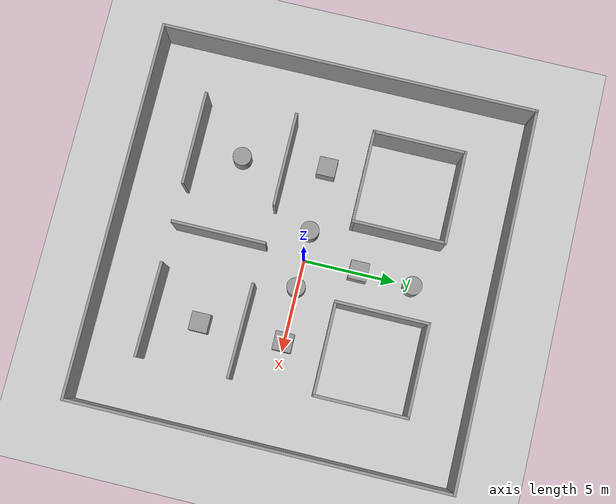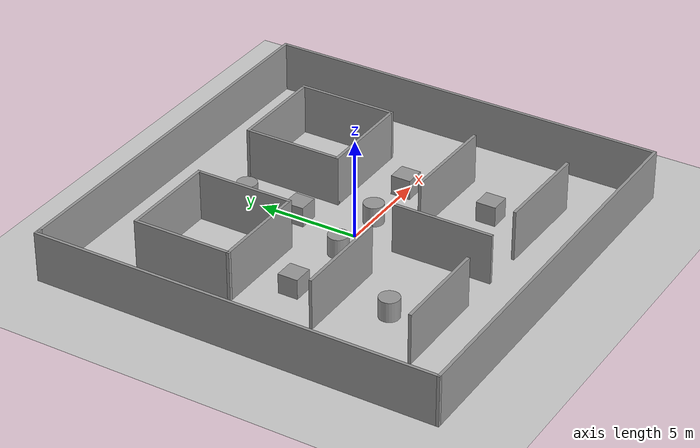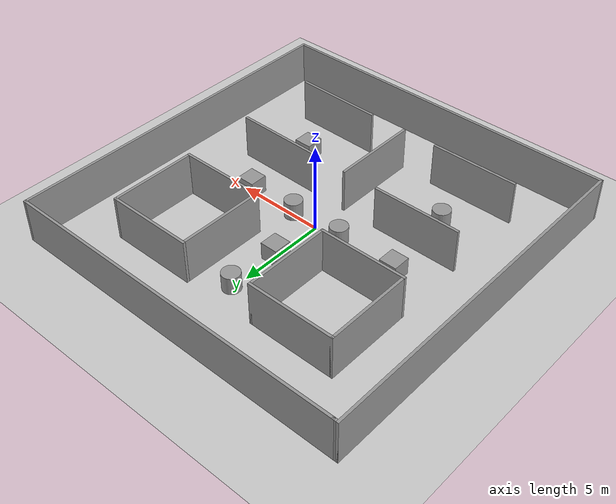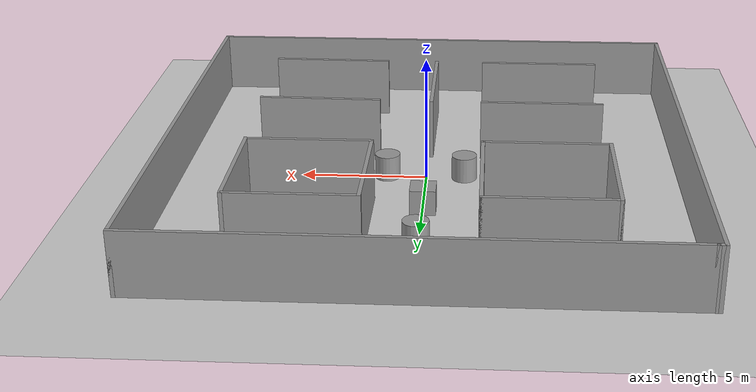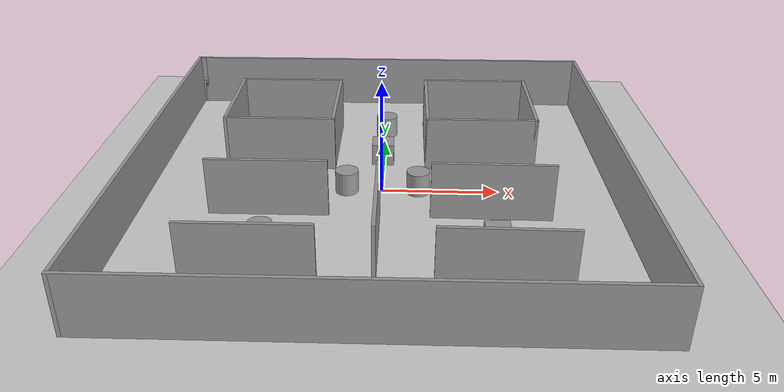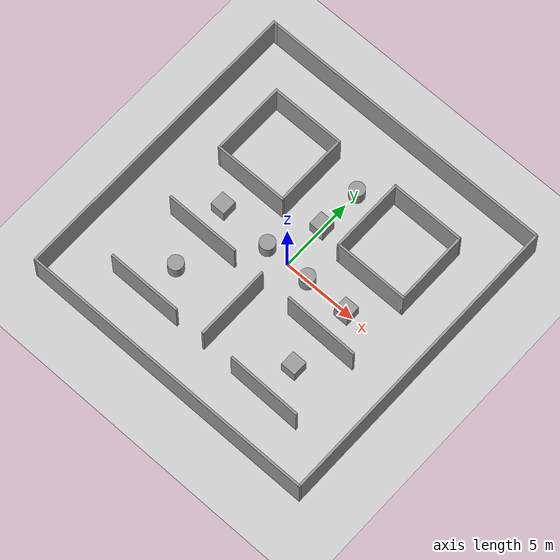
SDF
<sdf version="1.7">
 <world name="default">
  <light name="sun" type="directional">
   <pose>0 0 10 0 -0 0</pose>
   <diffuse>0.8 0.8 0.8 1</diffuse>
   <specular>0.2 0.2 0.2 1</specular>
   <attenuation>
    <range>1000</range>
    <constant>0.9</constant>
    <linear>0.01</linear>
    <quadratic>0.001</quadratic>
   </attenuation>
   <direction>-0.5 0.1 -0.9</direction>
   <spot><inner_angle>0</inner_angle><outer_angle>0</outer_angle><falloff>0</falloff></spot>
  </light>
  <plugin name="clock_control" filename="libclock_plugin.so"/>
  <model name="ground_plane">
   <static>1</static>
   <link name="link">
    <collision name="collision">
     <geometry><plane><normal>0 0 1</normal><size>100 100</size></plane></geometry>
     <surface>
      <contact><collide_bitmask>65535</collide_bitmask></contact>
      <friction><ode><mu>100</mu><mu2>50</mu2></ode></friction>
     </surface>
    </collision>
    <visual name="visual">
     <cast_shadows>0</cast_shadows>
     <geometry><plane><normal>0 0 1</normal><size>100 100</size></plane></geometry>
     <material>
      <script><uri>file://media/materials/scripts/gazebo.material</uri><name>Gazebo/Grey</name></script>
     </material>
    </visual>
   </link>
  </model>
  <gravity>0 0 -9.8</gravity>
  <magnetic_field>6e-06 2.3e-05 -4.2e-05</magnetic_field>
  <atmosphere type="adiabatic"/>
  <physics type="ode">
   <max_step_size>0.01</max_step_size>
   <real_time_factor>1</real_time_factor>
   <real_time_update_rate>1000</real_time_update_rate>
  </physics>
  <scene><ambient>0.4 0.4 0.4 1</ambient><background>0.7 0.7 0.7 1</background><shadows>1</shadows></scene>
  <spherical_coordinates>
   <surface_model>EARTH_WGS84</surface_model>
   <latitude_deg>0</latitude_deg>
   <longitude_deg>0</longitude_deg>
   <elevation>0</elevation>
   <heading_deg>0</heading_deg>
  </spherical_coordinates>
  <model name="p2p_enhanced">
   <pose>-0.103745 0.000206 0 0 -0 0</pose>
   <link name="Wall_10">
    <collision name="Wall_10_Collision">
     <geometry><box><size>20 0.15 2.5</size></box></geometry>
     <pose>0 0 1.25 0 -0 0</pose>
    </collision>
    <visual name="Wall_10_Visual">
     <pose>0 0 1.25 0 -0 0</pose>
     <geometry><box><size>20 0.15 2.5</size></box></geometry>
     <material>
      <script><uri>file://media/materials/scripts/gazebo.material</uri><name>Gazebo/Grey</name></script>
      <ambient>1 1 1 1</ambient>
     </material>
     <meta><layer>0</layer></meta>
    </visual>
    <pose>0.125 10.05 0 0 -0 0</pose>
   </link>
   <link name="Wall_11">
    <collision name="Wall_11_Collision">
     <geometry><box><size>20.25 0.15 2.5</size></box></geometry>
     <pose>0 0 1.25 0 -0 0</pose>
    </collision>
    <visual name="Wall_11_Visual">
     <pose>0 0 1.25 0 -0 0</pose>
     <geometry><box><size>20.25 0.15 2.5</size></box></geometry>
     <material>
      <script><uri>file://media/materials/scripts/gazebo.material</uri><name>Gazebo/Grey</name></script>
      <ambient>1 1 1 1</ambient>
     </material>
     <meta><layer>0</layer></meta>
    </visual>
    <pose>10.05 0 0 0 -0 -1.5708</pose>
   </link>
   <link name="Wall_12">
    <collision name="Wall_12_Collision">
     <geometry><box><size>20.25 0.15 2.5</size></box></geometry>
     <pose>0 0 1.25 0 -0 0</pose>
    </collision>
    <visual name="Wall_12_Visual">
     <pose>0 0 1.25 0 -0 0</pose>
     <geometry><box><size>20.25 0.15 2.5</size></box></geometry>
     <material>
      <script><uri>file://media/materials/scripts/gazebo.material</uri><name>Gazebo/Grey</name></script>
      <ambient>1 1 1 1</ambient>
     </material>
     <meta><layer>0</layer></meta>
    </visual>
    <pose>-0 -10.05 0 0 -0 3.14159</pose>
   </link>
   <link name="Wall_13">
    <collision name="Wall_13_Collision">
     <geometry><box><size>20.25 0.15 2.5</size></box></geometry>
     <pose>0 0 1.25 0 -0 0</pose>
    </collision>
    <visual name="Wall_13_Visual">
     <pose>0 0 1.25 0 -0 0</pose>
     <geometry><box><size>20.25 0.15 2.5</size></box></geometry>
     <material>
      <script><uri>file://media/materials/scripts/gazebo.material</uri><name>Gazebo/Grey</name></script>
      <ambient>1 1 1 1</ambient>
     </material>
     <meta><layer>0</layer></meta>
    </visual>
    <pose>-10.05 0 0 0 -0 1.5708</pose>
   </link>
   <link name="Wall_15">
    <collision name="Wall_15_Collision">
     <geometry><box><size>0.4 0.15 2.5</size></box></geometry>
     <pose>0 0 1.25 0 -0 0</pose>
    </collision>
    <visual name="Wall_15_Visual">
     <pose>0 0 1.25 0 -0 0</pose>
     <geometry><box><size>0.4 0.15 2.5</size></box></geometry>
     <material>
      <script><uri>file://media/materials/scripts/gazebo.material</uri><name>Gazebo/Grey</name></script>
      <ambient>1 1 1 1</ambient>
     </material>
     <meta><layer>0</layer></meta>
    </visual>
    <pose>-9.925 10.05 0 0 -0 0</pose>
   </link>
   <link name="Wall_22">
    <collision name="Wall_22_Collision">
     <geometry><box><size>5 0.15 2.5</size></box></geometry>
     <pose>0 0 1.25 0 -0 0</pose>
    </collision>
    <visual name="Wall_22_Visual">
     <pose>0 0 1.25 0 -0 0</pose>
     <geometry><box><size>5 0.15 2.5</size></box></geometry>
     <material>
      <script><uri>file://media/materials/scripts/gazebo.material</uri><name>Gazebo/Grey</name></script>
      <ambient>1 1 1 1</ambient>
     </material>
     <meta><layer>0</layer></meta>
    </visual>
    <pose>4.50775 6.99276 0 0 -0 3.14159</pose>
   </link>
   <link name="Wall_23">
    <collision name="Wall_23_Collision">
     <geometry><box><size>5 0.15 2.5</size></box></geometry>
     <pose>0 0 1.25 0 -0 0</pose>
    </collision>
    <visual name="Wall_23_Visual">
     <pose>0 0 1.25 0 -0 0</pose>
     <geometry><box><size>5 0.15 2.5</size></box></geometry>
     <material>
      <script><uri>file://media/materials/scripts/gazebo.material</uri><name>Gazebo/Grey</name></script>
      <ambient>1 1 1 1</ambient>
     </material>
     <meta><layer>0</layer></meta>
    </visual>
    <pose>2.08275 4.56776 0 0 -0 -1.5708</pose>
   </link>
   <link name="Wall_24">
    <collision name="Wall_24_Collision">
     <geometry><box><size>5 0.15 2.5</size></box></geometry>
     <pose>0 0 1.25 0 -0 0</pose>
    </collision>
    <visual name="Wall_24_Visual">
     <pose>0 0 1.25 0 -0 0</pose>
     <geometry><box><size>5 0.15 2.5</size></box></geometry>
     <material>
      <script><uri>file://media/materials/scripts/gazebo.material</uri><name>Gazebo/Grey</name></script>
      <ambient>1 1 1 1</ambient>
     </material>
     <meta><layer>0</layer></meta>
    </visual>
    <pose>4.50775 2.14276 0 0 -0 0</pose>
   </link>
   <link name="Wall_25">
    <collision name="Wall_25_Collision">
     <geometry><box><size>5 0.15 2.5</size></box></geometry>
     <pose>0 0 1.25 0 -0 0</pose>
    </collision>
    <visual name="Wall_25_Visual">
     <pose>0 0 1.25 0 -0 0</pose>
     <geometry><box><size>5 0.15 2.5</size></box></geometry>
     <material>
      <script><uri>file://media/materials/scripts/gazebo.material</uri><name>Gazebo/Grey</name></script>
      <ambient>1 1 1 1</ambient>
     </material>
     <meta><layer>0</layer></meta>
    </visual>
    <pose>6.93275 4.56776 0 0 -0 1.5708</pose>
   </link>
   <link name="Wall_31">
    <collision name="Wall_31_Collision">
     <geometry><box><size>5 0.15 2.5</size></box></geometry>
     <pose>0 0 1.25 0 -0 0</pose>
    </collision>
    <visual name="Wall_31_Visual">
     <pose>0 0 1.25 0 -0 0</pose>
     <geometry><box><size>5 0.15 2.5</size></box></geometry>
     <material>
      <script><uri>file://media/materials/scripts/gazebo.material</uri><name>Gazebo/Grey</name></script>
      <ambient>1 1 1 1</ambient>
     </material>
     <meta><layer>0</layer></meta>
    </visual>
    <pose>-4.58316 6.90038 0 0 -0 0</pose>
   </link>
   <link name="Wall_32">
    <collision name="Wall_32_Collision">
     <geometry><box><size>5 0.15 2.5</size></box></geometry>
     <pose>0 0 1.25 0 -0 0</pose>
    </collision>
    <visual name="Wall_32_Visual">
     <pose>0 0 1.25 0 -0 0</pose>
     <geometry><box><size>5 0.15 2.5</size></box></geometry>
     <material>
      <script><uri>file://media/materials/scripts/gazebo.material</uri><name>Gazebo/Grey</name></script>
      <ambient>1 1 1 1</ambient>
     </material>
     <meta><layer>0</layer></meta>
    </visual>
    <pose>-2.15816 4.47538 0 0 -0 -1.5708</pose>
   </link>
   <link name="Wall_33">
    <collision name="Wall_33_Collision">
     <geometry><box><size>5 0.15 2.5</size></box></geometry>
     <pose>0 0 1.25 0 -0 0</pose>
    </collision>
    <visual name="Wall_33_Visual">
     <pose>0 0 1.25 0 -0 0</pose>
     <geometry><box><size>5 0.15 2.5</size></box></geometry>
     <material>
      <script><uri>file://media/materials/scripts/gazebo.material</uri><name>Gazebo/Grey</name></script>
      <ambient>1 1 1 1</ambient>
     </material>
     <meta><layer>0</layer></meta>
    </visual>
    <pose>-4.58316 2.05038 0 0 -0 3.14159</pose>
   </link>
   <link name="Wall_34">
    <collision name="Wall_34_Collision">
     <geometry><box><size>5 0.15 2.5</size></box></geometry>
     <pose>0 0 1.25 0 -0 0</pose>
    </collision>
    <visual name="Wall_34_Visual">
     <pose>0 0 1.25 0 -0 0</pose>
     <geometry><box><size>5 0.15 2.5</size></box></geometry>
     <material>
      <script><uri>file://media/materials/scripts/gazebo.material</uri><name>Gazebo/Grey</name></script>
      <ambient>1 1 1 1</ambient>
     </material>
     <meta><layer>0</layer></meta>
    </visual>
    <pose>-7.00816 4.47538 0 0 -0 1.5708</pose>
   </link>
   <link name="Wall_41">
    <collision name="Wall_41_Collision">
     <geometry><box><size>5 0.15 2.5</size></box></geometry>
     <pose>0 0 1.25 0 -0 0</pose>
    </collision>
    <visual name="Wall_41_Visual">
     <pose>0 0 1.25 0 -0 0</pose>
     <geometry><box><size>5 0.15 2.5</size></box></geometry>
     <material>
      <script><uri>file://media/materials/scripts/gazebo.material</uri><name>Gazebo/Grey</name></script>
      <ambient>1 1 1 1</ambient>
     </material>
     <meta><layer>0</layer></meta>
    </visual>
    <pose>4.66017 -7.00514 0 0 -0 3.12491</pose>
   </link>
   <link name="Wall_43">
    <collision name="Wall_43_Collision">
     <geometry><box><size>5.00068 0.15 2.5</size></box></geometry>
     <pose>0 0 1.25 0 -0 0</pose>
    </collision>
    <visual name="Wall_43_Visual">
     <pose>0 0 1.25 0 -0 0</pose>
     <geometry><box><size>5.00068 0.15 2.5</size></box></geometry>
     <material>
      <script><uri>file://media/materials/scripts/gazebo.material</uri><name>Gazebo/Grey</name></script>
      <ambient>1 1 1 1</ambient>
     </material>
     <meta><layer>0</layer></meta>
    </visual>
    <pose>4.63356 -2.20834 0 0 -0 -0.016681</pose>
   </link>
   <link name="Wall_50">
    <collision name="Wall_50_Collision">
     <geometry><box><size>5 0.15 2.5</size></box></geometry>
     <pose>0 0 1.25 0 -0 0</pose>
    </collision>
    <visual name="Wall_50_Visual">
     <pose>0 0 1.25 0 -0 0</pose>
     <geometry><box><size>5 0.15 2.5</size></box></geometry>
     <material>
      <script><uri>file://media/materials/scripts/gazebo.material</uri><name>Gazebo/Grey</name></script>
      <ambient>1 1 1 1</ambient>
     </material>
     <meta><layer>0</layer></meta>
    </visual>
    <pose>-4.51874 -6.94868 0 0 -0 0</pose>
   </link>
   <link name="Wall_52">
    <collision name="Wall_52_Collision">
     <geometry><box><size>5 0.15 2.5</size></box></geometry>
     <pose>0 0 1.25 0 -0 0</pose>
    </collision>
    <visual name="Wall_52_Visual">
     <pose>0 0 1.25 0 -0 0</pose>
     <geometry><box><size>5 0.15 2.5</size></box></geometry>
     <material>
      <script><uri>file://media/materials/scripts/gazebo.material</uri><name>Gazebo/Grey</name></script>
      <ambient>1 1 1 1</ambient>
     </material>
     <meta><layer>0</layer></meta>
    </visual>
    <pose>-4.51874 -2.09868 0 0 -0 3.14159</pose>
   </link>
   <link name="Wall_59">
    <collision name="Wall_59_Collision">
     <geometry><box><size>5 0.15 2.5</size></box></geometry>
     <pose>0 0 1.25 0 -0 0</pose>
    </collision>
    <visual name="Wall_59_Visual">
     <pose>0 0 1.25 0 -0 0</pose>
     <geometry><box><size>5 0.15 2.5</size></box></geometry>
     <material>
      <script><uri>file://media/materials/scripts/gazebo.material</uri><name>Gazebo/Grey</name></script>
      <ambient>1 1 1 1</ambient>
     </material>
     <meta><layer>0</layer></meta>
    </visual>
    <pose>0.012386 -4.52554 0 0 -0 -1.5708</pose>
   </link>
   <static>1</static>
  </model>
  <model name="unit_box">
   <pose>-0.024151 2.95564 0.499995 0 1e-05 0</pose>
   <link name="link">
    <inertial>
     <mass>1</mass>
     <inertia>
      <ixx>0.166667</ixx>
      <ixy>0</ixy>
      <ixz>0</ixz>
      <iyy>0.166667</iyy>
      <iyz>0</iyz>
      <izz>0.166667</izz>
     </inertia>
    </inertial>
    <collision name="collision"><geometry><box><size>1 1 1</size></box></geometry></collision>
    <visual name="visual">
     <geometry><box><size>1 1 1</size></box></geometry>
     <material>
      <script><name>Gazebo/Grey</name><uri>file://media/materials/scripts/gazebo.material</uri></script>
     </material>
    </visual>
   </link>
  </model>
  <model name="unit_cylinder">
   <pose>1.56599 -0.044831 0.499998 3e-06 -4e-06 0</pose>
   <link name="link">
    <inertial>
     <mass>1</mass>
     <inertia><ixx>0.145833</ixx><ixy>0</ixy><ixz>0</ixz><iyy>0.145833</iyy><iyz>0</iyz><izz>0.125</izz></inertia>
    </inertial>
    <collision name="collision">
     <geometry><cylinder><radius>0.5</radius><length>1</length></cylinder></geometry>
    </collision>
    <visual name="visual">
     <geometry><cylinder><radius>0.5</radius><length>1</length></cylinder></geometry>
     <material>
      <script><name>Gazebo/Grey</name><uri>file://media/materials/scripts/gazebo.material</uri></script>
     </material>
    </visual>
   </link>
  </model>
  <model name="unit_cylinder_0">
   <pose>-1.51579 -0.039579 0.499993 -3e-06 2e-06 0</pose>
   <link name="link">
    <inertial>
     <mass>1</mass>
     <inertia><ixx>0.145833</ixx><ixy>0</ixy><ixz>0</ixz><iyy>0.145833</iyy><iyz>0</iyz><izz>0.125</izz></inertia>
    </inertial>
    <collision name="collision">
     <geometry><cylinder><radius>0.5</radius><length>1</length></cylinder></geometry>
    </collision>
    <visual name="visual">
     <geometry><cylinder><radius>0.5</radius><length>1</length></cylinder></geometry>
     <material>
      <script><name>Gazebo/Grey</name><uri>file://media/materials/scripts/gazebo.material</uri></script>
     </material>
    </visual>
   </link>
  </model>
  <model name="unit_cylinder_1">
   <pose>-4.55889 -4.47752 0.499994 -4e-06 -3e-06 -0</pose>
   <link name="link">
    <inertial>
     <mass>1</mass>
     <inertia><ixx>0.145833</ixx><ixy>0</ixy><ixz>0</ixz><iyy>0.145833</iyy><iyz>0</iyz><izz>0.125</izz></inertia>
    </inertial>
    <collision name="collision">
     <geometry><cylinder><radius>0.5</radius><length>1</length></cylinder></geometry>
    </collision>
    <visual name="visual">
     <geometry><cylinder><radius>0.5</radius><length>1</length></cylinder></geometry>
     <material>
      <script><name>Gazebo/Grey</name><uri>file://media/materials/scripts/gazebo.material</uri></script>
     </material>
    </visual>
   </link>
  </model>
  <model name="unit_box_1">
   <pose>4.53679 -4.49716 0.499995 0 1e-05 0</pose>
   <link name="link">
    <inertial>
     <mass>1</mass>
     <inertia>
      <ixx>0.166667</ixx>
      <ixy>0</ixy>
      <ixz>0</ixz>
      <iyy>0.166667</iyy>
      <iyz>0</iyz>
      <izz>0.166667</izz>
     </inertia>
    </inertial>
    <collision name="collision"><geometry><box><size>1 1 1</size></box></geometry></collision>
    <visual name="visual">
     <geometry><box><size>1 1 1</size></box></geometry>
     <material>
      <script><name>Gazebo/Grey</name><uri>file://media/materials/scripts/gazebo.material</uri></script>
     </material>
    </visual>
   </link>
  </model>
  <model name="unit_box_2">
   <pose>4.51321 -0.021742 0.499995 -1e-05 -0 -0</pose>
   <link name="link">
    <inertial>
     <mass>1</mass>
     <inertia>
      <ixx>0.166667</ixx>
      <ixy>0</ixy>
      <ixz>0</ixz>
      <iyy>0.166667</iyy>
      <iyz>0</iyz>
      <izz>0.166667</izz>
     </inertia>
    </inertial>
    <collision name="collision"><geometry><box><size>1 1 1</size></box></geometry></collision>
    <visual name="visual">
     <geometry><box><size>1 1 1</size></box></geometry>
     <material>
      <script><name>Gazebo/Grey</name><uri>file://media/materials/scripts/gazebo.material</uri></script>
     </material>
    </visual>
   </link>
  </model>
  <model name="unit_box_3">
   <pose>-5.05375 0.064135 0.499995 0 1e-05 0</pose>
   <link name="link">
    <inertial>
     <mass>1</mass>
     <inertia>
      <ixx>0.166667</ixx>
      <ixy>0</ixy>
      <ixz>0</ixz>
      <iyy>0.166667</iyy>
      <iyz>0</iyz>
      <izz>0.166667</izz>
     </inertia>
    </inertial>
    <collision name="collision"><geometry><box><size>1 1 1</size></box></geometry></collision>
    <visual name="visual">
     <geometry><box><size>1 1 1</size></box></geometry>
     <material>
      <script><name>Gazebo/Grey</name><uri>file://media/materials/scripts/gazebo.material</uri></script>
     </material>
    </visual>
   </link>
  </model>
  <model name="unit_cylinder_5">
   <pose>0.083005 5.88003 0.499997 3e-06 4e-06 -0</pose>
   <link name="link">
    <inertial>
     <mass>1</mass>
     <inertia><ixx>0.145833</ixx><ixy>0</ixy><ixz>0</ixz><iyy>0.145833</iyy><iyz>0</iyz><izz>0.125</izz></inertia>
    </inertial>
    <collision name="collision">
     <geometry><cylinder><radius>0.5</radius><length>1</length></cylinder></geometry>
    </collision>
    <visual name="visual">
     <geometry><cylinder><radius>0.5</radius><length>1</length></cylinder></geometry>
     <material>
      <script><name>Gazebo/Grey</name><uri>file://media/materials/scripts/gazebo.material</uri></script>
     </material>
    </visual>
   </link>
  </model>
 </world>
</sdf>
